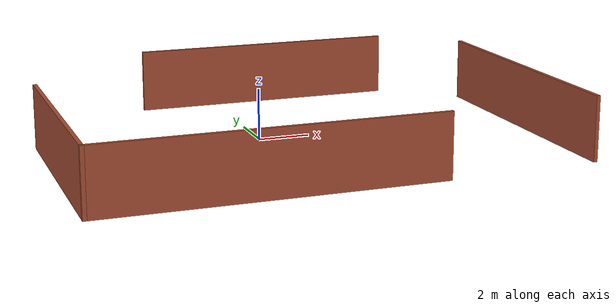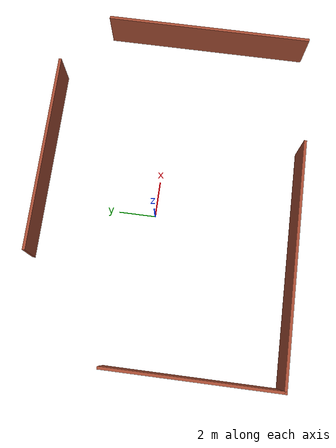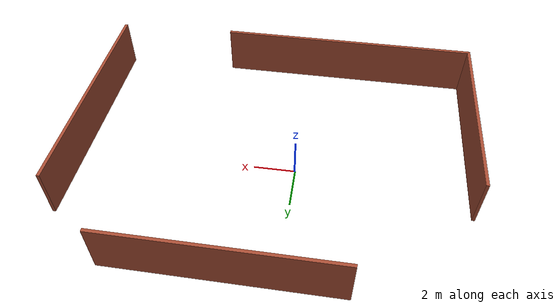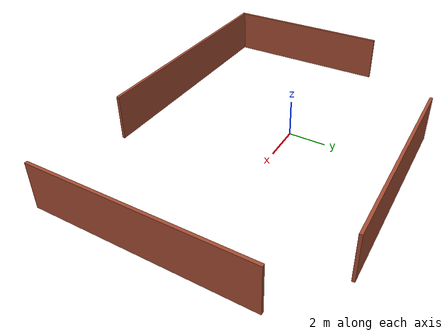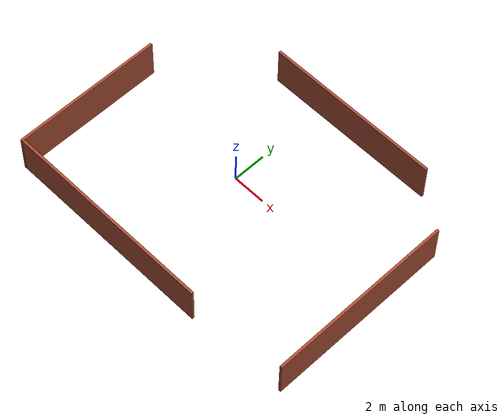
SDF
<?xml version='1.0'?>
<sdf version='1.7'>
  <model name='gazebo_lidarSensor2'>
    <pose>1.12583 -0.61302 0 0 -0 0</pose>
    <link name='Wall_11'>
      <collision name='Wall_11_Collision'>
        <geometry>
          <box>
            <size>10.75 0.15 2.5</size>
          </box>
        </geometry>
        <pose>0 0 1.25 0 -0 0</pose>
      </collision>
      <visual name='Wall_11_Visual'>
        <pose>0 0 1.25 0 -0 0</pose>
        <geometry>
          <box>
            <size>10.75 0.15 2.5</size>
          </box>
        </geometry>
        <material>
          <script>
            <uri>file://media/materials/scripts/gazebo.material</uri>
            <name>Gazebo/Bricks</name>
          </script>
          <ambient>1 1 1 1</ambient>
        </material>
        <meta>
          <layer>0</layer>
        </meta>
      </visual>
      <pose>1.16038 6.89881 0 0 -0 3.14159</pose>
    </link>
    <link name='Wall_5'>
      <collision name='Wall_5_Collision'>
        <geometry>
          <box>
            <size>13 0.15 2.5</size>
          </box>
        </geometry>
        <pose>0 0 1.25 0 -0 0</pose>
      </collision>
      <visual name='Wall_5_Visual'>
        <pose>0 0 1.25 0 -0 0</pose>
        <geometry>
          <box>
            <size>13 0.15 2.5</size>
          </box>
        </geometry>
        <material>
          <script>
            <uri>file://media/materials/scripts/gazebo.material</uri>
            <name>Gazebo/Bricks</name>
          </script>
          <ambient>1 1 1 1</ambient>
        </material>
        <meta>
          <layer>0</layer>
        </meta>
      </visual>
      <pose>-3.00718 -6.89881 0 0 -0 3.14159</pose>
    </link>
    <link name='Wall_6'>
      <collision name='Wall_6_Collision'>
        <geometry>
          <box>
            <size>9.25 0.15 2.5</size>
          </box>
        </geometry>
        <pose>0 0 1.25 0 -0 0</pose>
      </collision>
      <visual name='Wall_6_Visual'>
        <pose>0 0 1.25 0 -0 0</pose>
        <geometry>
          <box>
            <size>9.25 0.15 2.5</size>
          </box>
        </geometry>
        <material>
          <script>
            <uri>file://media/materials/scripts/gazebo.material</uri>
            <name>Gazebo/Bricks</name>
          </script>
          <ambient>1 1 1 1</ambient>
        </material>
        <meta>
          <layer>0</layer>
        </meta>
      </visual>
      <pose>-9.43218 -2.34881 0 0 -0 1.5708</pose>
    </link>
    <link name='Wall_8'>
      <collision name='Wall_8_Collision'>
        <geometry>
          <box>
            <size>11.25 0.15 2.5</size>
          </box>
        </geometry>
        <pose>0 0 1.25 0 -0 0</pose>
      </collision>
      <visual name='Wall_8_Visual'>
        <pose>0 0 1.25 0 -0 0</pose>
        <geometry>
          <box>
            <size>11.25 0.15 2.5</size>
          </box>
        </geometry>
        <material>
          <script>
            <uri>file://media/materials/scripts/gazebo.material</uri>
            <name>Gazebo/Bricks</name>
          </script>
          <ambient>1 1 1 1</ambient>
        </material>
        <meta>
          <layer>0</layer>
        </meta>
      </visual>
      <pose>9.43218 -1.05693 0 0 -0 -1.5708</pose>
    </link>
    <static>1</static>
  </model>
</sdf>
